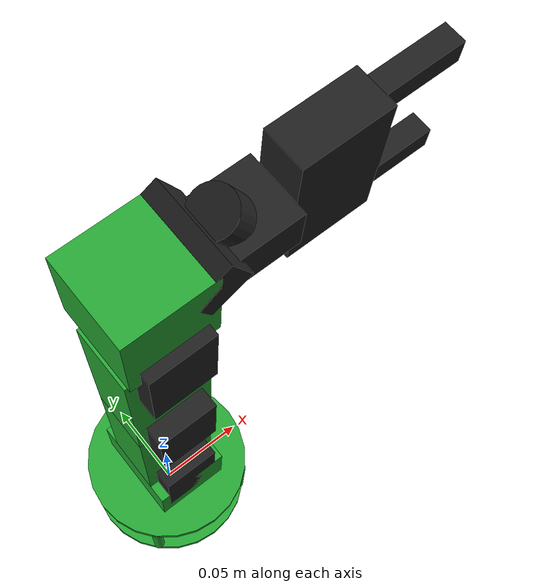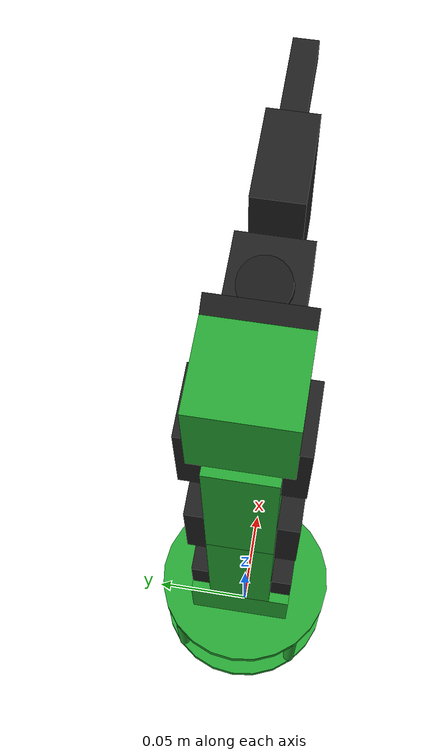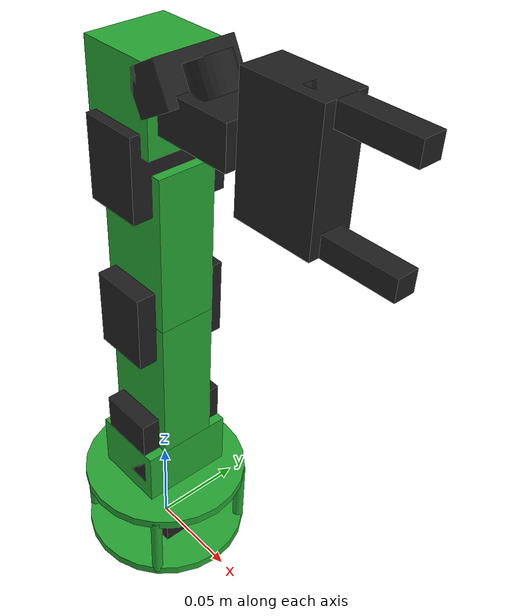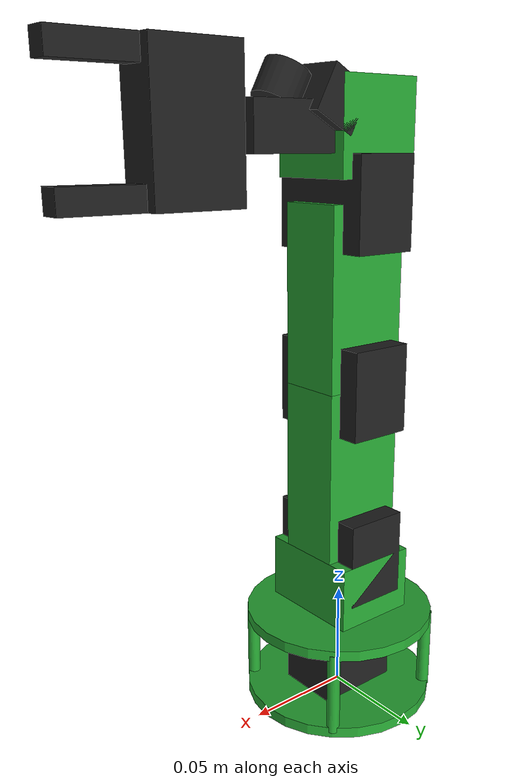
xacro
<?xml version="1.0"?>
<robot xmlns:xacro="http://www.ros.org/wiki/xacro">
    <link name="arm_pedestal_link">
        <visual><origin xyz="0 0 0" rpy="0 0 0"/><geometry><cylinder radius="0.045" length="0.005"/></geometry><material name="yahboom_green"/></visual>
        <visual><origin xyz="0 0 0.04" rpy="0 0 0"/><geometry><cylinder radius="0.045" length="0.005"/></geometry><material name="yahboom_green"/></visual>
        <visual><origin xyz="0.03 0.03 0.02" rpy="0 0 0"/><geometry><cylinder radius="0.003" length="0.04"/></geometry><material name="brass"/></visual>
        <visual><origin xyz="-0.03 0.03 0.02" rpy="0 0 0"/><geometry><cylinder radius="0.003" length="0.04"/></geometry><material name="brass"/></visual>
        <visual><origin xyz="0.03 -0.03 0.02" rpy="0 0 0"/><geometry><cylinder radius="0.003" length="0.04"/></geometry><material name="brass"/></visual>
        <visual><origin xyz="-0.03 -0.03 0.02" rpy="0 0 0"/><geometry><cylinder radius="0.003" length="0.04"/></geometry><material name="brass"/></visual>
        <visual><origin xyz="0 0 0.02" rpy="0 0 0"/><geometry><box size="0.04 0.03 0.035"/></geometry><material name="metal_black"/></visual>
        <collision><origin xyz="0 0 0.02" rpy="0 0 0"/><geometry><cylinder radius="0.045" length="0.045"/></geometry></collision>
        <inertial><mass value="0.2"/><inertia ixx="0.0001" ixy="0" ixz="0" iyy="0.0001" iyz="0" izz="0.0001"/></inertial>
    </link>

    <link name="arm_link1_waist">
        <visual><origin xyz="0 0 0.015" rpy="0 0 0"/><geometry><box size="0.04 0.05 0.03"/></geometry><material name="yahboom_green"/></visual>
        <collision><origin xyz="0 0 0.015" rpy="0 0 0"/><geometry><box size="0.04 0.05 0.03"/></geometry></collision>
        <inertial><mass value="0.05"/><inertia ixx="0.00005" ixy="0" ixz="0" iyy="0.00005" iyz="0" izz="0.00005"/></inertial>
    </link>
    <joint name="joint1_waist" type="revolute"><parent link="arm_pedestal_link"/><child link="arm_link1_waist"/><origin xyz="0 0 0.045" rpy="0 0 0"/><axis xyz="0 0 1"/><limit lower="${-pi/2}" upper="${pi/2}" effort="10" velocity="1.0"/></joint>

    <link name="arm_link2_shoulder">
        <visual><origin xyz="0 0 0" rpy="0 0 0"/><geometry><box size="0.03 0.05 0.04"/></geometry><material name="metal_black"/></visual>
        <visual><origin xyz="0 0 0.04" rpy="0 0 0"/><geometry><box size="0.04 0.03 0.08"/></geometry><material name="yahboom_green"/></visual>
        <collision><origin xyz="0 0 0.04" rpy="0 0 0"/><geometry><box size="0.04 0.03 0.10"/></geometry></collision>
        <inertial><mass value="0.1"/><inertia ixx="0.0001" ixy="0" ixz="0" iyy="0.0001" iyz="0" izz="0.0001"/></inertial>
    </link>
    <joint name="joint2_shoulder" type="revolute"><parent link="arm_link1_waist"/><child link="arm_link2_shoulder"/><origin xyz="0 0 0.03" rpy="0 0 0"/><axis xyz="0 1 0"/><limit lower="${-pi/2}" upper="${pi/2}" effort="10" velocity="1.0"/></joint>

    <link name="arm_link3_elbow">
        <visual><origin xyz="0 0 0" rpy="0 0 0"/><geometry><box size="0.03 0.05 0.04"/></geometry><material name="metal_black"/></visual>
        <visual><origin xyz="0 0 0.04" rpy="0 0 0"/><geometry><box size="0.04 0.03 0.08"/></geometry><material name="yahboom_green"/></visual>
        <collision><origin xyz="0 0 0.04" rpy="0 0 0"/><geometry><box size="0.04 0.03 0.10"/></geometry></collision>
        <inertial><mass value="0.1"/><inertia ixx="0.0001" ixy="0" ixz="0" iyy="0.0001" iyz="0" izz="0.0001"/></inertial>
    </link>
    <joint name="joint3_elbow" type="revolute"><parent link="arm_link2_shoulder"/><child link="arm_link3_elbow"/><origin xyz="0 0 0.08" rpy="0 0 0"/><axis xyz="0 1 0"/><limit lower="${-pi/2}" upper="${pi/2}" effort="10" velocity="1.0"/></joint>

    <link name="arm_link4_wrist">
        <visual><origin xyz="0 0 0" rpy="0 0 0"/><geometry><box size="0.03 0.05 0.04"/></geometry><material name="metal_black"/></visual>
        <visual><origin xyz="0 0 0.03" rpy="0 0 0"/><geometry><box size="0.04 0.04 0.04"/></geometry><material name="yahboom_green"/></visual>
        <visual><origin xyz="0.02 0 0.04" rpy="0 -0.5 0"/><geometry><box size="0.02 0.04 0.02"/></geometry><material name="metal_black"/></visual>
        <visual><origin xyz="0.035 0 0.045" rpy="0 -0.5 0"/><geometry><cylinder radius="0.01" length="0.015"/></geometry><material name="metal_black"/></visual>
        <collision><origin xyz="0 0 0.02" rpy="0 0 0"/><geometry><box size="0.04 0.04 0.06"/></geometry></collision>
        <inertial><mass value="0.1"/><inertia ixx="0.0001" ixy="0" ixz="0" iyy="0.0001" iyz="0" izz="0.0001"/></inertial>
    </link>
    <joint name="joint4_wrist" type="revolute"><parent link="arm_link3_elbow"/><child link="arm_link4_wrist"/><origin xyz="0 0 0.08" rpy="0 0 0"/><axis xyz="0 1 0"/><limit lower="${-pi/2}" upper="${pi/2}" effort="5" velocity="1.0"/></joint>

    <link name="arm_link5_roll">
        <visual><origin xyz="0 0 0.02" rpy="0 0 0"/><geometry><box size="0.02 0.03 0.04"/></geometry><material name="metal_black"/></visual>
        <collision><origin xyz="0 0 0.02" rpy="0 0 0"/><geometry><box size="0.02 0.03 0.04"/></geometry></collision>
        <inertial><mass value="0.05"/><inertia ixx="0.00005" ixy="0" ixz="0" iyy="0.00005" iyz="0" izz="0.00005"/></inertial>
    </link>
    <joint name="joint5_roll" type="revolute"><parent link="arm_link4_wrist"/><child link="arm_link5_roll"/><origin xyz="0.02 0 0.03" rpy="0 1.5708 0"/><axis xyz="0 0 1"/><limit lower="${-pi}" upper="${pi}" effort="5" velocity="1.0"/></joint>

    <link name="gripper_link">
        <visual><origin xyz="0 0 0.02" rpy="0 0 0"/><geometry><box size="0.06 0.02 0.04"/></geometry><material name="metal_black"/></visual>
        <visual><origin xyz="0.025 0 0.05" rpy="0 0 0"/><geometry><box size="0.01 0.01 0.05"/></geometry><material name="metal_black"/></visual>
        <visual><origin xyz="-0.025 0 0.05" rpy="0 0 0"/><geometry><box size="0.01 0.01 0.05"/></geometry><material name="metal_black"/></visual>
        <collision><origin xyz="0 0 0.03" rpy="0 0 0"/><geometry><box size="0.06 0.02 0.08"/></geometry></collision>
        <inertial><mass value="0.05"/><inertia ixx="0.00005" ixy="0" ixz="0" iyy="0.00005" iyz="0" izz="0.00005"/></inertial>
    </link>
    <joint name="joint6_gripper" type="revolute"><parent link="arm_link5_roll"/><child link="gripper_link"/><origin xyz="0 0 0.04" rpy="0 0 0"/><axis xyz="0 1 0"/><limit lower="-0.5" upper="0.5" effort="5" velocity="1.0"/></joint>

    <gazebo reference="arm_pedestal_link"><material>Gazebo/Green</material></gazebo>
    <gazebo reference="arm_link1_waist"><material>Gazebo/Green</material></gazebo>
    <gazebo reference="arm_link2_shoulder"><material>Gazebo/Green</material></gazebo>
    <gazebo reference="arm_link3_elbow"><material>Gazebo/Green</material></gazebo>
    <gazebo reference="arm_link4_wrist"><material>Gazebo/Green</material></gazebo>
    <gazebo reference="arm_link5_roll"><material>Gazebo/Black</material></gazebo>
    <gazebo reference="gripper_link"><material>Gazebo/Black</material></gazebo>
</robot>
